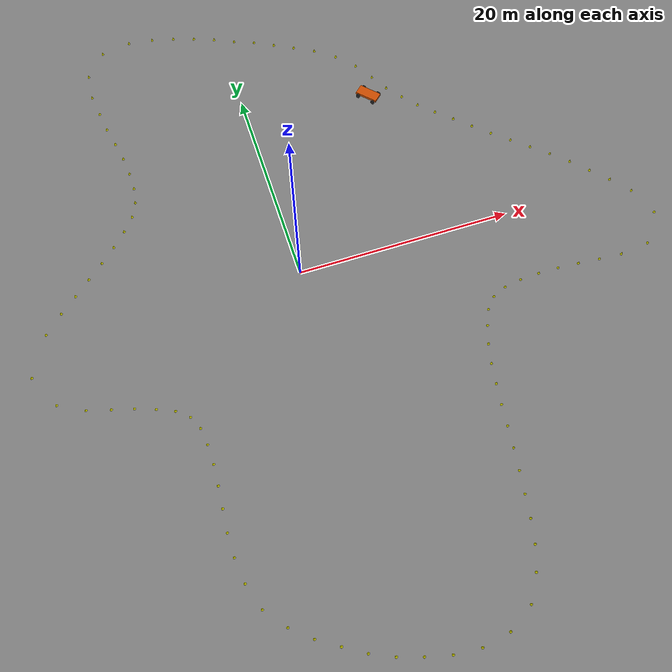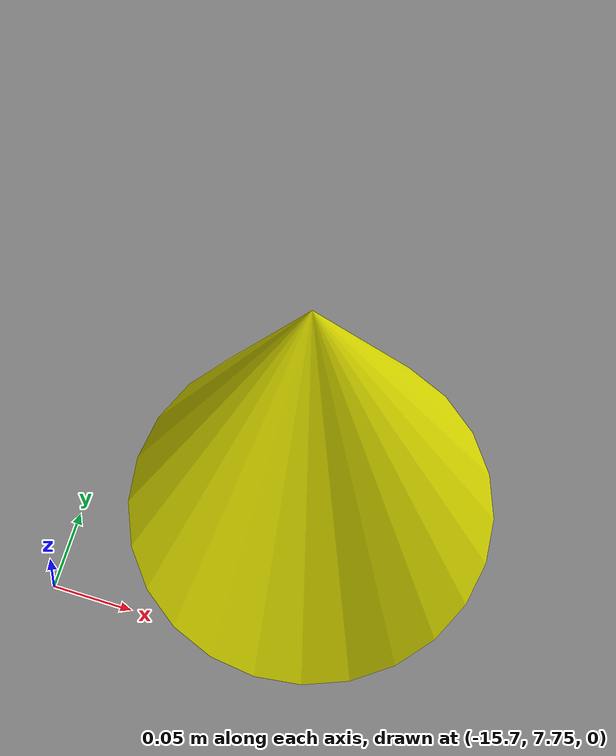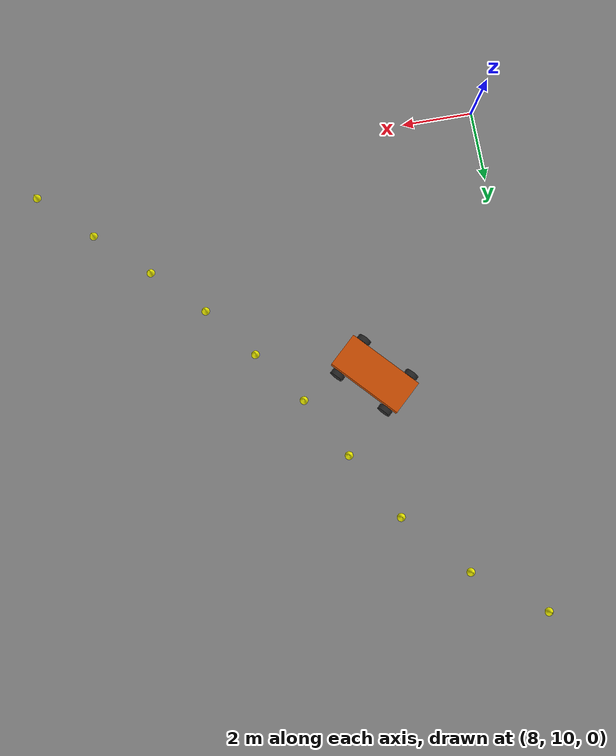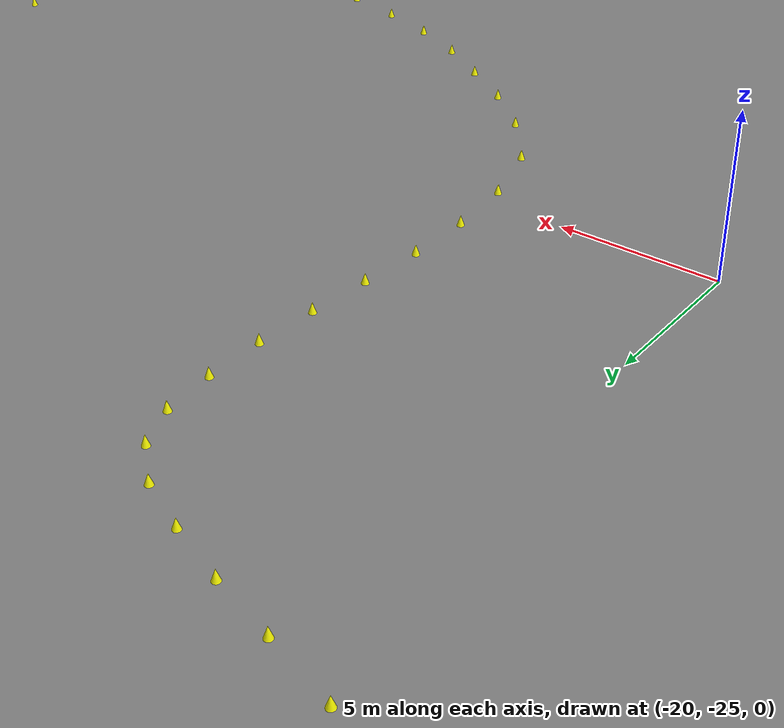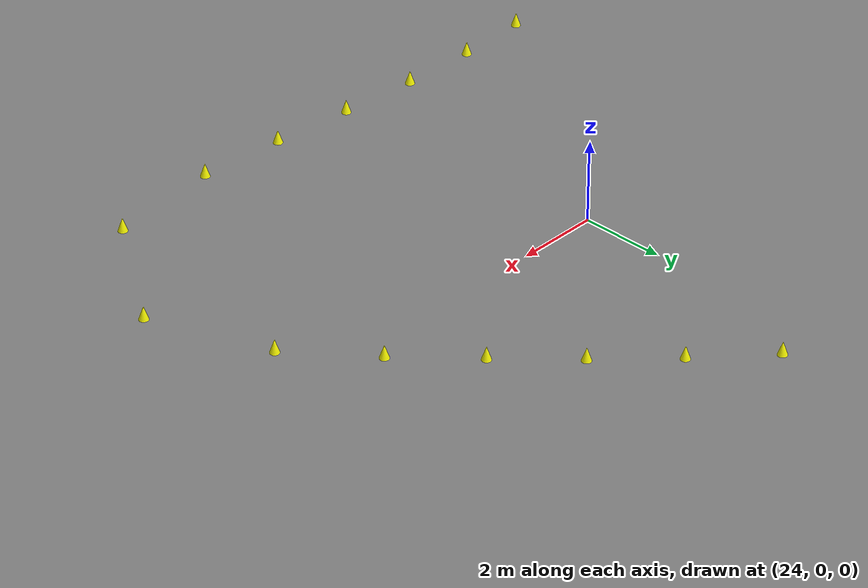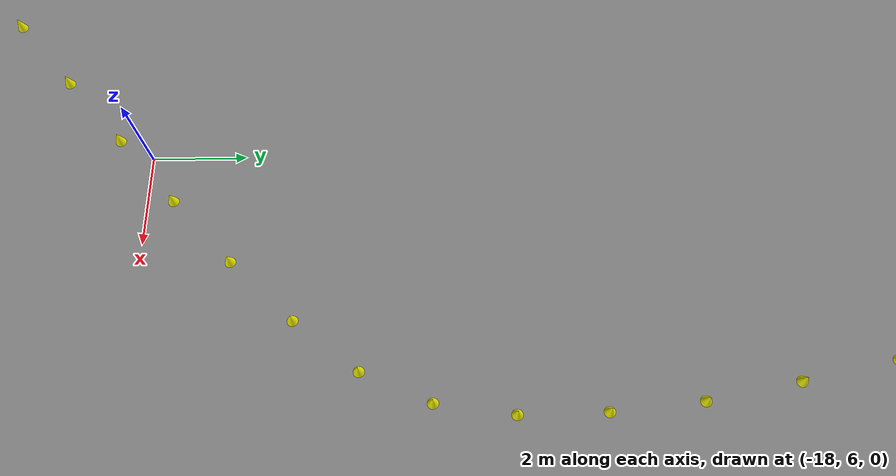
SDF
<sdf version="1.9">
 <world name="fsae_world">
  <plugin filename="gz-sim-physics-system" name="gz::sim::systems::Physics"/>
  <plugin filename="gz-sim-user-commands-system" name="gz::sim::systems::UserCommands"/>
  <plugin filename="gz-sim-scene-broadcaster-system" name="gz::sim::systems::SceneBroadcaster"/>
  <plugin filename="gz-sim-imu-system" name="gz::sim::systems::Imu"/>
  <plugin filename="gz-sim-sensors-system" name="gz::sim::systems::Sensors">
   <render_engine>ogre2</render_engine>
  </plugin>
  <scene><ambient>1.0 1.0 1.0</ambient><background>0.7 0.8 0.9</background></scene>
  <gravity>0 0 -9.81</gravity>
  <physics name="default_physics" type="ode">
   <max_step_size>0.001</max_step_size>
   <real_time_factor>1.0</real_time_factor>
  </physics>
  <light type="directional" name="sun">
   <pose>0 0 50 0 0 0</pose>
   <diffuse>0.9 0.9 0.9 1</diffuse>
   <specular>0.3 0.3 0.3 1</specular>
   <direction>-0.5 0.3 -1.0</direction>
  </light>
  <model name="ground_plane">
   <static>true</static>
   <link name="link">
    <collision name="collision">
     <geometry><plane><normal>0 0 1</normal><size>200 200</size></plane></geometry>
     <surface><friction><ode><mu>1.0</mu><mu2>1.0</mu2></ode></friction></surface>
    </collision>
    <visual name="visual">
     <geometry><plane><normal>0 0 1</normal><size>200 200</size></plane></geometry>
     <material><ambient>0.4 0.4 0.4 1</ambient><diffuse>0.5 0.5 0.5 1</diffuse></material>
    </visual>
   </link>
  </model>
  <include>
   <uri>model://fsae_vehicle</uri>
   <name>fsae_vehicle</name>
   <pose>12.7255 16.4240 0.0000 0 0 2.3205</pose>
  </include>
  <include>
   <uri>model://cone_yellow</uri>
   <name>cone_yellow_0</name>
   <pose>-25.1518 -2.7472 0.1625 0 0 0</pose>
  </include>
  <include>
   <uri>model://cone_yellow</uri>
   <name>cone_yellow_1</name>
   <pose>-23.6009 -5.9338 0.1625 0 0 0</pose>
  </include>
  <include>
   <uri>model://cone_yellow</uri>
   <name>cone_yellow_2</name>
   <pose>-21.3082 -7.1638 0.1625 0 0 0</pose>
  </include>
  <include>
   <uri>model://cone_yellow</uri>
   <name>cone_yellow_3</name>
   <pose>-19.2432 -7.7646 0.1625 0 0 0</pose>
  </include>
  <include>
   <uri>model://cone_yellow</uri>
   <name>cone_yellow_4</name>
   <pose>-17.3426 -8.3063 0.1625 0 0 0</pose>
  </include>
  <include>
   <uri>model://cone_yellow</uri>
   <name>cone_yellow_5</name>
   <pose>-15.5922 -8.9359 0.1625 0 0 0</pose>
  </include>
  <include>
   <uri>model://cone_yellow</uri>
   <name>cone_yellow_6</name>
   <pose>-14.0611 -9.6128 0.1625 0 0 0</pose>
  </include>
  <include>
   <uri>model://cone_yellow</uri>
   <name>cone_yellow_7</name>
   <pose>-12.9940 -10.5411 0.1625 0 0 0</pose>
  </include>
  <include>
   <uri>model://cone_yellow</uri>
   <name>cone_yellow_8</name>
   <pose>-12.4269 -11.7801 0.1625 0 0 0</pose>
  </include>
  <include>
   <uri>model://cone_yellow</uri>
   <name>cone_yellow_9</name>
   <pose>-12.2379 -13.3778 0.1625 0 0 0</pose>
  </include>
  <include>
   <uri>model://cone_yellow</uri>
   <name>cone_yellow_10</name>
   <pose>-12.2041 -15.2110 0.1625 0 0 0</pose>
  </include>
  <include>
   <uri>model://cone_yellow</uri>
   <name>cone_yellow_11</name>
   <pose>-12.3166 -17.1348 0.1625 0 0 0</pose>
  </include>
  <include>
   <uri>model://cone_yellow</uri>
   <name>cone_yellow_12</name>
   <pose>-12.4739 -19.1251 0.1625 0 0 0</pose>
  </include>
  <include>
   <uri>model://cone_yellow</uri>
   <name>cone_yellow_13</name>
   <pose>-12.6269 -21.1805 0.1625 0 0 0</pose>
  </include>
  <include>
   <uri>model://cone_yellow</uri>
   <name>cone_yellow_14</name>
   <pose>-12.6293 -23.3167 0.1625 0 0 0</pose>
  </include>
  <include>
   <uri>model://cone_yellow</uri>
   <name>cone_yellow_15</name>
   <pose>-12.3773 -25.5925 0.1625 0 0 0</pose>
  </include>
  <include>
   <uri>model://cone_yellow</uri>
   <name>cone_yellow_16</name>
   <pose>-11.6365 -27.9613 0.1625 0 0 0</pose>
  </include>
  <include>
   <uri>model://cone_yellow</uri>
   <name>cone_yellow_17</name>
   <pose>-10.1215 -29.9011 0.1625 0 0 0</pose>
  </include>
  <include>
   <uri>model://cone_yellow</uri>
   <name>cone_yellow_18</name>
   <pose>-8.4076 -31.3910 0.1625 0 0 0</pose>
  </include>
  <include>
   <uri>model://cone_yellow</uri>
   <name>cone_yellow_19</name>
   <pose>-6.6006 -32.5830 0.1625 0 0 0</pose>
  </include>
  <include>
   <uri>model://cone_yellow</uri>
   <name>cone_yellow_20</name>
   <pose>-4.7796 -33.7186 0.1625 0 0 0</pose>
  </include>
  <include>
   <uri>model://cone_yellow</uri>
   <name>cone_yellow_21</name>
   <pose>-2.8256 -34.6202 0.1625 0 0 0</pose>
  </include>
  <include>
   <uri>model://cone_yellow</uri>
   <name>cone_yellow_22</name>
   <pose>-0.7615 -35.2939 0.1625 0 0 0</pose>
  </include>
  <include>
   <uri>model://cone_yellow</uri>
   <name>cone_yellow_23</name>
   <pose>1.4083 -35.8498 0.1625 0 0 0</pose>
  </include>
  <include>
   <uri>model://cone_yellow</uri>
   <name>cone_yellow_24</name>
   <pose>3.7545 -36.0498 0.1625 0 0 0</pose>
  </include>
  <include>
   <uri>model://cone_yellow</uri>
   <name>cone_yellow_25</name>
   <pose>6.2585 -35.6109 0.1625 0 0 0</pose>
  </include>
  <include>
   <uri>model://cone_yellow</uri>
   <name>cone_yellow_26</name>
   <pose>8.5886 -34.1715 0.1625 0 0 0</pose>
  </include>
  <include>
   <uri>model://cone_yellow</uri>
   <name>cone_yellow_27</name>
   <pose>9.9255 -31.9494 0.1625 0 0 0</pose>
  </include>
  <include>
   <uri>model://cone_yellow</uri>
   <name>cone_yellow_28</name>
   <pose>10.7050 -29.8112 0.1625 0 0 0</pose>
  </include>
  <include>
   <uri>model://cone_yellow</uri>
   <name>cone_yellow_29</name>
   <pose>11.1736 -27.7292 0.1625 0 0 0</pose>
  </include>
  <include>
   <uri>model://cone_yellow</uri>
   <name>cone_yellow_30</name>
   <pose>11.5015 -25.6827 0.1625 0 0 0</pose>
  </include>
  <include>
   <uri>model://cone_yellow</uri>
   <name>cone_yellow_31</name>
   <pose>11.8268 -23.6658 0.1625 0 0 0</pose>
  </include>
  <include>
   <uri>model://cone_yellow</uri>
   <name>cone_yellow_32</name>
   <pose>12.1134 -21.6691 0.1625 0 0 0</pose>
  </include>
  <include>
   <uri>model://cone_yellow</uri>
   <name>cone_yellow_33</name>
   <pose>12.3635 -19.6873 0.1625 0 0 0</pose>
  </include>
  <include>
   <uri>model://cone_yellow</uri>
   <name>cone_yellow_34</name>
   <pose>12.5897 -17.7151 0.1625 0 0 0</pose>
  </include>
  <include>
   <uri>model://cone_yellow</uri>
   <name>cone_yellow_35</name>
   <pose>12.8810 -15.7787 0.1625 0 0 0</pose>
  </include>
  <include>
   <uri>model://cone_yellow</uri>
   <name>cone_yellow_36</name>
   <pose>13.1713 -13.8690 0.1625 0 0 0</pose>
  </include>
  <include>
   <uri>model://cone_yellow</uri>
   <name>cone_yellow_37</name>
   <pose>13.6148 -12.0287 0.1625 0 0 0</pose>
  </include>
  <include>
   <uri>model://cone_yellow</uri>
   <name>cone_yellow_38</name>
   <pose>14.2031 -10.3283 0.1625 0 0 0</pose>
  </include>
  <include>
   <uri>model://cone_yellow</uri>
   <name>cone_yellow_39</name>
   <pose>14.8585 -8.8611 0.1625 0 0 0</pose>
  </include>
  <include>
   <uri>model://cone_yellow</uri>
   <name>cone_yellow_40</name>
   <pose>15.7912 -7.8034 0.1625 0 0 0</pose>
  </include>
  <include>
   <uri>model://cone_yellow</uri>
   <name>cone_yellow_41</name>
   <pose>17.1067 -7.2164 0.1625 0 0 0</pose>
  </include>
  <include>
   <uri>model://cone_yellow</uri>
   <name>cone_yellow_42</name>
   <pose>18.7279 -6.9404 0.1625 0 0 0</pose>
  </include>
  <include>
   <uri>model://cone_yellow</uri>
   <name>cone_yellow_43</name>
   <pose>20.5357 -6.8515 0.1625 0 0 0</pose>
  </include>
  <include>
   <uri>model://cone_yellow</uri>
   <name>cone_yellow_44</name>
   <pose>22.4285 -6.8793 0.1625 0 0 0</pose>
  </include>
  <include>
   <uri>model://cone_yellow</uri>
   <name>cone_yellow_45</name>
   <pose>24.3743 -7.0297 0.1625 0 0 0</pose>
  </include>
  <include>
   <uri>model://cone_yellow</uri>
   <name>cone_yellow_46</name>
   <pose>26.3812 -7.2102 0.1625 0 0 0</pose>
  </include>
  <include>
   <uri>model://cone_yellow</uri>
   <name>cone_yellow_47</name>
   <pose>28.5064 -7.3560 0.1625 0 0 0</pose>
  </include>
  <include>
   <uri>model://cone_yellow</uri>
   <name>cone_yellow_48</name>
   <pose>31.2864 -7.0215 0.1625 0 0 0</pose>
  </include>
  <include>
   <uri>model://cone_yellow</uri>
   <name>cone_yellow_49</name>
   <pose>33.3021 -4.1731 0.1625 0 0 0</pose>
  </include>
  <include>
   <uri>model://cone_yellow</uri>
   <name>cone_yellow_50</name>
   <pose>32.2641 -1.3184 0.1625 0 0 0</pose>
  </include>
  <include>
   <uri>model://cone_yellow</uri>
   <name>cone_yellow_51</name>
   <pose>30.8432 0.4589 0.1625 0 0 0</pose>
  </include>
  <include>
   <uri>model://cone_yellow</uri>
   <name>cone_yellow_52</name>
   <pose>29.4338 2.0191 0.1625 0 0 0</pose>
  </include>
  <include>
   <uri>model://cone_yellow</uri>
   <name>cone_yellow_53</name>
   <pose>28.0330 3.5322 0.1625 0 0 0</pose>
  </include>
  <include>
   <uri>model://cone_yellow</uri>
   <name>cone_yellow_54</name>
   <pose>26.5834 4.9635 0.1625 0 0 0</pose>
  </include>
  <include>
   <uri>model://cone_yellow</uri>
   <name>cone_yellow_55</name>
   <pose>25.0791 6.3141 0.1625 0 0 0</pose>
  </include>
  <include>
   <uri>model://cone_yellow</uri>
   <name>cone_yellow_56</name>
   <pose>23.5824 7.6595 0.1625 0 0 0</pose>
  </include>
  <include>
   <uri>model://cone_yellow</uri>
   <name>cone_yellow_57</name>
   <pose>22.0832 8.9908 0.1625 0 0 0</pose>
  </include>
  <include>
   <uri>model://cone_yellow</uri>
   <name>cone_yellow_58</name>
   <pose>20.6296 10.3555 0.1625 0 0 0</pose>
  </include>
  <include>
   <uri>model://cone_yellow</uri>
   <name>cone_yellow_59</name>
   <pose>19.2086 11.7322 0.1625 0 0 0</pose>
  </include>
  <include>
   <uri>model://cone_yellow</uri>
   <name>cone_yellow_60</name>
   <pose>17.7824 13.0652 0.1625 0 0 0</pose>
  </include>
  <include>
   <uri>model://cone_yellow</uri>
   <name>cone_yellow_61</name>
   <pose>16.4426 14.4093 0.1625 0 0 0</pose>
  </include>
  <include>
   <uri>model://cone_yellow</uri>
   <name>cone_yellow_62</name>
   <pose>15.2856 15.8560 0.1625 0 0 0</pose>
  </include>
  <include>
   <uri>model://cone_yellow</uri>
   <name>cone_yellow_63</name>
   <pose>14.1829 17.3435 0.1625 0 0 0</pose>
  </include>
  <include>
   <uri>model://cone_yellow</uri>
   <name>cone_yellow_64</name>
   <pose>13.2391 19.0450 0.1625 0 0 0</pose>
  </include>
  <include>
   <uri>model://cone_yellow</uri>
   <name>cone_yellow_65</name>
   <pose>12.1559 20.9246 0.1625 0 0 0</pose>
  </include>
  <include>
   <uri>model://cone_yellow</uri>
   <name>cone_yellow_66</name>
   <pose>10.5966 22.6710 0.1625 0 0 0</pose>
  </include>
  <include>
   <uri>model://cone_yellow</uri>
   <name>cone_yellow_67</name>
   <pose>8.7569 24.0398 0.1625 0 0 0</pose>
  </include>
  <include>
   <uri>model://cone_yellow</uri>
   <name>cone_yellow_68</name>
   <pose>6.8930 25.0939 0.1625 0 0 0</pose>
  </include>
  <include>
   <uri>model://cone_yellow</uri>
   <name>cone_yellow_69</name>
   <pose>5.0771 26.0692 0.1625 0 0 0</pose>
  </include>
  <include>
   <uri>model://cone_yellow</uri>
   <name>cone_yellow_70</name>
   <pose>3.2537 27.0015 0.1625 0 0 0</pose>
  </include>
  <include>
   <uri>model://cone_yellow</uri>
   <name>cone_yellow_71</name>
   <pose>1.3487 27.7619 0.1625 0 0 0</pose>
  </include>
  <include>
   <uri>model://cone_yellow</uri>
   <name>cone_yellow_72</name>
   <pose>-0.5174 28.6289 0.1625 0 0 0</pose>
  </include>
  <include>
   <uri>model://cone_yellow</uri>
   <name>cone_yellow_73</name>
   <pose>-2.4540 29.3664 0.1625 0 0 0</pose>
  </include>
  <include>
   <uri>model://cone_yellow</uri>
   <name>cone_yellow_74</name>
   <pose>-4.4481 30.0254 0.1625 0 0 0</pose>
  </include>
  <include>
   <uri>model://cone_yellow</uri>
   <name>cone_yellow_75</name>
   <pose>-6.5385 30.5426 0.1625 0 0 0</pose>
  </include>
  <include>
   <uri>model://cone_yellow</uri>
   <name>cone_yellow_76</name>
   <pose>-8.8626 30.8688 0.1625 0 0 0</pose>
  </include>
  <include>
   <uri>model://cone_yellow</uri>
   <name>cone_yellow_77</name>
   <pose>-11.6966 30.3246 0.1625 0 0 0</pose>
  </include>
  <include>
   <uri>model://cone_yellow</uri>
   <name>cone_yellow_78</name>
   <pose>-13.6522 27.8983 0.1625 0 0 0</pose>
  </include>
  <include>
   <uri>model://cone_yellow</uri>
   <name>cone_yellow_79</name>
   <pose>-13.8633 25.2519 0.1625 0 0 0</pose>
  </include>
  <include>
   <uri>model://cone_yellow</uri>
   <name>cone_yellow_80</name>
   <pose>-13.5800 23.0708 0.1625 0 0 0</pose>
  </include>
  <include>
   <uri>model://cone_yellow</uri>
   <name>cone_yellow_81</name>
   <pose>-13.3070 21.0263 0.1625 0 0 0</pose>
  </include>
  <include>
   <uri>model://cone_yellow</uri>
   <name>cone_yellow_82</name>
   <pose>-12.9095 19.0706 0.1625 0 0 0</pose>
  </include>
  <include>
   <uri>model://cone_yellow</uri>
   <name>cone_yellow_83</name>
   <pose>-12.5515 17.1674 0.1625 0 0 0</pose>
  </include>
  <include>
   <uri>model://cone_yellow</uri>
   <name>cone_yellow_84</name>
   <pose>-12.3734 15.3102 0.1625 0 0 0</pose>
  </include>
  <include>
   <uri>model://cone_yellow</uri>
   <name>cone_yellow_85</name>
   <pose>-12.3471 13.5505 0.1625 0 0 0</pose>
  </include>
  <include>
   <uri>model://cone_yellow</uri>
   <name>cone_yellow_86</name>
   <pose>-12.5869 11.9494 0.1625 0 0 0</pose>
  </include>
  <include>
   <uri>model://cone_yellow</uri>
   <name>cone_yellow_87</name>
   <pose>-13.2268 10.5196 0.1625 0 0 0</pose>
  </include>
  <include>
   <uri>model://cone_yellow</uri>
   <name>cone_yellow_88</name>
   <pose>-14.2840 9.1818 0.1625 0 0 0</pose>
  </include>
  <include>
   <uri>model://cone_yellow</uri>
   <name>cone_yellow_89</name>
   <pose>-15.5646 7.8466 0.1625 0 0 0</pose>
  </include>
  <include>
   <uri>model://cone_yellow</uri>
   <name>cone_yellow_90</name>
   <pose>-16.9671 6.5442 0.1625 0 0 0</pose>
  </include>
  <include>
   <uri>model://cone_yellow</uri>
   <name>cone_yellow_91</name>
   <pose>-18.4391 5.2493 0.1625 0 0 0</pose>
  </include>
  <include>
   <uri>model://cone_yellow</uri>
   <name>cone_yellow_92</name>
   <pose>-19.9391 3.9231 0.1625 0 0 0</pose>
  </include>
  <include>
   <uri>model://cone_yellow</uri>
   <name>cone_yellow_93</name>
   <pose>-21.5003 2.5925 0.1625 0 0 0</pose>
  </include>
  <include>
   <uri>model://cone_yellow</uri>
   <name>cone_yellow_94</name>
   <pose>-23.1781 0.9474 0.1625 0 0 0</pose>
  </include>
 </world>
</sdf>

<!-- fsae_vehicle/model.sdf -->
<sdf version="1.9">
  <model name="fsae_vehicle">

    <!-- ===== CHASSIS ===== -->
    <link name="chassis">
      <pose>0.8 0 0.35 0 0 0</pose>
      <inertial>
        <mass>200.0</mass>
        <inertia>
          <ixx>20.0</ixx>
          <iyy>80.0</iyy>
          <izz>80.0</izz>
          <ixy>0</ixy><ixz>0</ixz><iyz>0</iyz>
        </inertia>
      </inertial>
      <visual name="body_visual">
        <geometry>
          <box><size>2.2 1.0 0.25</size></box>
        </geometry>
        <material>
          <ambient>0.8 0.3 0.0 1</ambient>
          <diffuse>0.8 0.3 0.0 1</diffuse>
        </material>
      </visual>
      <collision name="body_collision">
        <geometry>
          <box><size>2.2 1.0 0.25</size></box>
        </geometry>
      </collision>

      <!-- IMU sensor -->
      <sensor name="imu_sensor" type="imu">
        <always_on>true</always_on>
        <update_rate>100</update_rate>
        <visualize>false</visualize>
        <topic>/imu/data</topic>
      </sensor>

      <!-- LiDAR sensor (VLP-16 inspired, front-mounted) -->
      <sensor name="lidar" type="gpu_lidar">
        <pose>1.0 0 0.2 0 0 0</pose>
        <always_on>true</always_on>
        <update_rate>10</update_rate>
        <visualize>true</visualize>
        <topic>/lidar/points</topic>
        <lidar>
          <scan>
            <horizontal>
              <samples>360</samples>
              <resolution>1</resolution>
              <min_angle>-3.14159</min_angle>
              <max_angle>3.14159</max_angle>
            </horizontal>
            <vertical>
              <samples>16</samples>
              <resolution>1</resolution>
              <min_angle>-0.261799</min_angle>
              <max_angle>0.261799</max_angle>
            </vertical>
          </scan>
          <range>
            <min>0.5</min>
            <max>25.0</max>
            <resolution>0.01</resolution>
          </range>
        </lidar>
      </sensor>
    </link>

    <!-- ===== FRONT LEFT STEERING KNUCKLE ===== -->
    <link name="front_left_steering">
      <pose>1.6 0.6 0.2 0 0 0</pose>
      <inertial>
        <mass>0.1</mass>
        <inertia>
          <ixx>0.0001</ixx><iyy>0.0001</iyy><izz>0.0001</izz>
          <ixy>0</ixy><ixz>0</ixz><iyz>0</iyz>
        </inertia>
      </inertial>
    </link>

    <joint name="front_left_steering_joint" type="revolute">
      <parent>chassis</parent>
      <child>front_left_steering</child>
      <axis>
        <xyz>0 0 1</xyz>
        <limit>
          <lower>-0.7</lower>
          <upper>0.7</upper>
          <effort>1e6</effort>
          <velocity>10.0</velocity>
        </limit>
      </axis>
    </joint>

    <!-- FRONT LEFT WHEEL -->
    <link name="front_left_wheel">
      <pose>1.6 0.6 0.2 -1.5708 0 0</pose>
      <inertial>
        <mass>8.0</mass>
        <inertia>
          <ixx>0.08</ixx><iyy>0.16</iyy><izz>0.08</izz>
          <ixy>0</ixy><ixz>0</ixz><iyz>0</iyz>
        </inertia>
      </inertial>
      <visual name="visual">
        <geometry>
          <cylinder><radius>0.2</radius><length>0.15</length></cylinder>
        </geometry>
        <material>
          <ambient>0.15 0.15 0.15 1</ambient>
          <diffuse>0.15 0.15 0.15 1</diffuse>
        </material>
      </visual>
      <collision name="collision">
        <geometry>
          <cylinder><radius>0.2</radius><length>0.15</length></cylinder>
        </geometry>
        <surface>
          <friction>
            <ode><mu>1.0</mu><mu2>0.8</mu2></ode>
          </friction>
        </surface>
      </collision>
    </link>

    <joint name="front_left_wheel_joint" type="revolute">
      <parent>front_left_steering</parent>
      <child>front_left_wheel</child>
      <axis>
        <xyz>0 0 1</xyz>
        <limit><lower>-1e16</lower><upper>1e16</upper><effort>1e6</effort></limit>
      </axis>
    </joint>

    <!-- ===== FRONT RIGHT STEERING KNUCKLE ===== -->
    <link name="front_right_steering">
      <pose>1.6 -0.6 0.2 0 0 0</pose>
      <inertial>
        <mass>0.1</mass>
        <inertia>
          <ixx>0.0001</ixx><iyy>0.0001</iyy><izz>0.0001</izz>
          <ixy>0</ixy><ixz>0</ixz><iyz>0</iyz>
        </inertia>
      </inertial>
    </link>

    <joint name="front_right_steering_joint" type="revolute">
      <parent>chassis</parent>
      <child>front_right_steering</child>
      <axis>
        <xyz>0 0 1</xyz>
        <limit>
          <lower>-0.7</lower>
          <upper>0.7</upper>
          <effort>1e6</effort>
          <velocity>10.0</velocity>
        </limit>
      </axis>
    </joint>

    <!-- FRONT RIGHT WHEEL -->
    <link name="front_right_wheel">
      <pose>1.6 -0.6 0.2 -1.5708 0 0</pose>
      <inertial>
        <mass>8.0</mass>
        <inertia>
          <ixx>0.08</ixx><iyy>0.16</iyy><izz>0.08</izz>
          <ixy>0</ixy><ixz>0</ixz><iyz>0</iyz>
        </inertia>
      </inertial>
      <visual name="visual">
        <geometry>
          <cylinder><radius>0.2</radius><length>0.15</length></cylinder>
        </geometry>
        <material>
          <ambient>0.15 0.15 0.15 1</ambient>
          <diffuse>0.15 0.15 0.15 1</diffuse>
        </material>
      </visual>
      <collision name="collision">
        <geometry>
          <cylinder><radius>0.2</radius><length>0.15</length></cylinder>
        </geometry>
        <surface>
          <friction>
            <ode><mu>1.0</mu><mu2>0.8</mu2></ode>
          </friction>
        </surface>
      </collision>
    </link>

    <joint name="front_right_wheel_joint" type="revolute">
      <parent>front_right_steering</parent>
      <child>front_right_wheel</child>
      <axis>
        <xyz>0 0 1</xyz>
        <limit><lower>-1e16</lower><upper>1e16</upper><effort>1e6</effort></limit>
      </axis>
    </joint>

    <!-- ===== REAR LEFT WHEEL (no steering knuckle) ===== -->
    <link name="rear_left_wheel">
      <pose>0 0.6 0.2 -1.5708 0 0</pose>
      <inertial>
        <mass>8.0</mass>
        <inertia>
          <ixx>0.08</ixx><iyy>0.16</iyy><izz>0.08</izz>
          <ixy>0</ixy><ixz>0</ixz><iyz>0</iyz>
        </inertia>
      </inertial>
      <visual name="visual">
        <geometry>
          <cylinder><radius>0.2</radius><length>0.15</length></cylinder>
        </geometry>
        <material>
          <ambient>0.15 0.15 0.15 1</ambient>
          <diffuse>0.15 0.15 0.15 1</diffuse>
        </material>
      </visual>
      <collision name="collision">
        <geometry>
          <cylinder><radius>0.2</radius><length>0.15</length></cylinder>
        </geometry>
        <surface>
          <friction>
            <ode><mu>1.0</mu><mu2>0.8</mu2></ode>
          </friction>
        </surface>
      </collision>
    </link>

    <joint name="rear_left_wheel_joint" type="revolute">
      <parent>chassis</parent>
      <child>rear_left_wheel</child>
      <axis>
        <xyz>0 0 1</xyz>
        <limit><lower>-1e16</lower><upper>1e16</upper><effort>1e6</effort></limit>
      </axis>
    </joint>

    <!-- ===== REAR RIGHT WHEEL (no steering knuckle) ===== -->
    <link name="rear_right_wheel">
      <pose>0 -0.6 0.2 -1.5708 0 0</pose>
      <inertial>
        <mass>8.0</mass>
        <inertia>
          <ixx>0.08</ixx><iyy>0.16</iyy><izz>0.08</izz>
          <ixy>0</ixy><ixz>0</ixz><iyz>0</iyz>
        </inertia>
      </inertial>
      <visual name="visual">
        <geometry>
          <cylinder><radius>0.2</radius><length>0.15</length></cylinder>
        </geometry>
        <material>
          <ambient>0.15 0.15 0.15 1</ambient>
          <diffuse>0.15 0.15 0.15 1</diffuse>
        </material>
      </visual>
      <collision name="collision">
        <geometry>
          <cylinder><radius>0.2</radius><length>0.15</length></cylinder>
        </geometry>
        <surface>
          <friction>
            <ode><mu>1.0</mu><mu2>0.8</mu2></ode>
          </friction>
        </surface>
      </collision>
    </link>

    <joint name="rear_right_wheel_joint" type="revolute">
      <parent>chassis</parent>
      <child>rear_right_wheel</child>
      <axis>
        <xyz>0 0 1</xyz>
        <limit><lower>-1e16</lower><upper>1e16</upper><effort>1e6</effort></limit>
      </axis>
    </joint>

    <!-- ===== STEERING: direct position control (bypasses physics solver) ===== -->
    <plugin
      filename="gz-sim-joint-position-controller-system"
      name="gz::sim::systems::JointPositionController">
      <joint_name>front_left_steering_joint</joint_name>
      <topic>/model/fsae_vehicle/joint/front_left_steering_joint/cmd_pos</topic>
      <use_velocity_commands>true</use_velocity_commands>
      <cmd_max>10.0</cmd_max>
      <cmd_min>-10.0</cmd_min>
    </plugin>

    <plugin
      filename="gz-sim-joint-position-controller-system"
      name="gz::sim::systems::JointPositionController">
      <joint_name>front_right_steering_joint</joint_name>
      <topic>/model/fsae_vehicle/joint/front_right_steering_joint/cmd_pos</topic>
      <use_velocity_commands>true</use_velocity_commands>
      <cmd_max>10.0</cmd_max>
      <cmd_min>-10.0</cmd_min>
    </plugin>

    <!-- ===== DRIVE: direct velocity control ===== -->
    <plugin
      filename="gz-sim-joint-controller-system"
      name="gz::sim::systems::JointController">
      <joint_name>front_left_wheel_joint</joint_name>
      <topic>/model/fsae_vehicle/joint/front_left_wheel_joint/cmd_vel</topic>
    </plugin>

    <plugin
      filename="gz-sim-joint-controller-system"
      name="gz::sim::systems::JointController">
      <joint_name>front_right_wheel_joint</joint_name>
      <topic>/model/fsae_vehicle/joint/front_right_wheel_joint/cmd_vel</topic>
    </plugin>

    <plugin
      filename="gz-sim-joint-controller-system"
      name="gz::sim::systems::JointController">
      <joint_name>rear_left_wheel_joint</joint_name>
      <topic>/model/fsae_vehicle/joint/rear_left_wheel_joint/cmd_vel</topic>
    </plugin>

    <plugin
      filename="gz-sim-joint-controller-system"
      name="gz::sim::systems::JointController">
      <joint_name>rear_right_wheel_joint</joint_name>
      <topic>/model/fsae_vehicle/joint/rear_right_wheel_joint/cmd_vel</topic>
    </plugin>

    <!-- ===== GROUND-TRUTH ODOMETRY (world-frame pose, not wheel encoders) ===== -->
    <plugin
      filename="gz-sim-odometry-publisher-system"
      name="gz::sim::systems::OdometryPublisher">
      <odom_topic>/model/fsae_vehicle/odometry</odom_topic>
      <odom_frame>map</odom_frame>
      <robot_base_frame>base_link</robot_base_frame>
      <odom_publish_frequency>50</odom_publish_frequency>
    </plugin>

  </model>
</sdf>

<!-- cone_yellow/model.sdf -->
<sdf version="1.9">
  <model name="cone_yellow">
    <static>true</static>
    <link name="link">
      <!-- collision disabled for tuning -->
      <visual name="visual">
        <pose>0 0 -0.1625 0 0 0</pose>
        <geometry>
          <mesh>
            <uri>model://cone_yellow/meshes/cone.stl</uri>
          </mesh>
        </geometry>
        <material>
          <ambient>1.0 1.0 0.0 1</ambient>
          <diffuse>1.0 1.0 0.0 1</diffuse>
          <specular>0.1 0.1 0.1 1</specular>
        </material>
      </visual>
    </link>
  </model>
</sdf>
